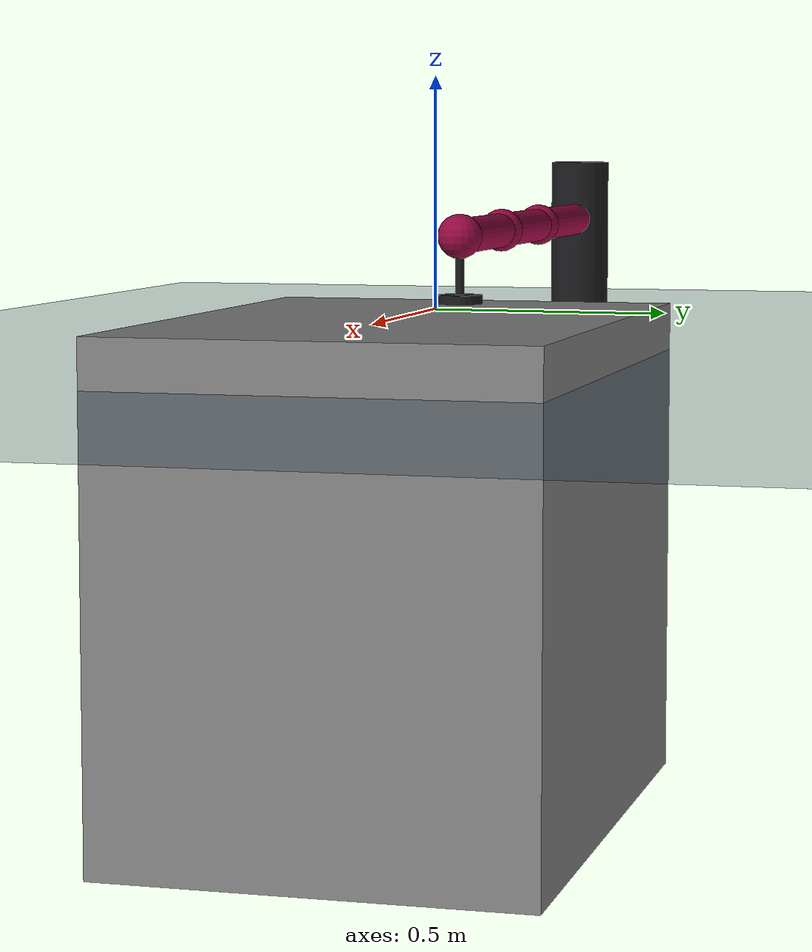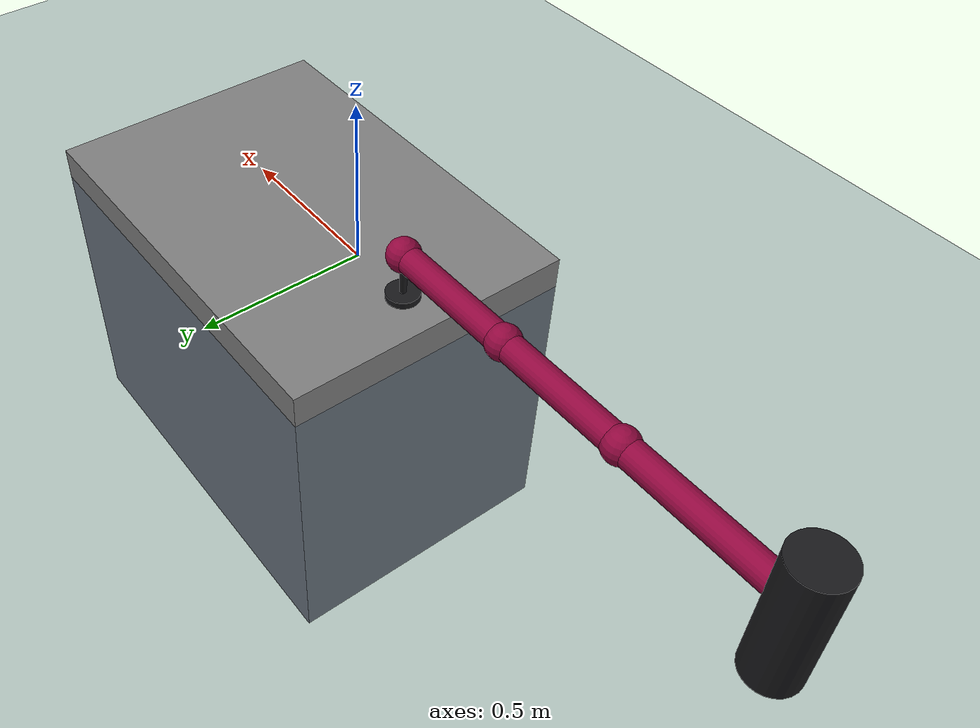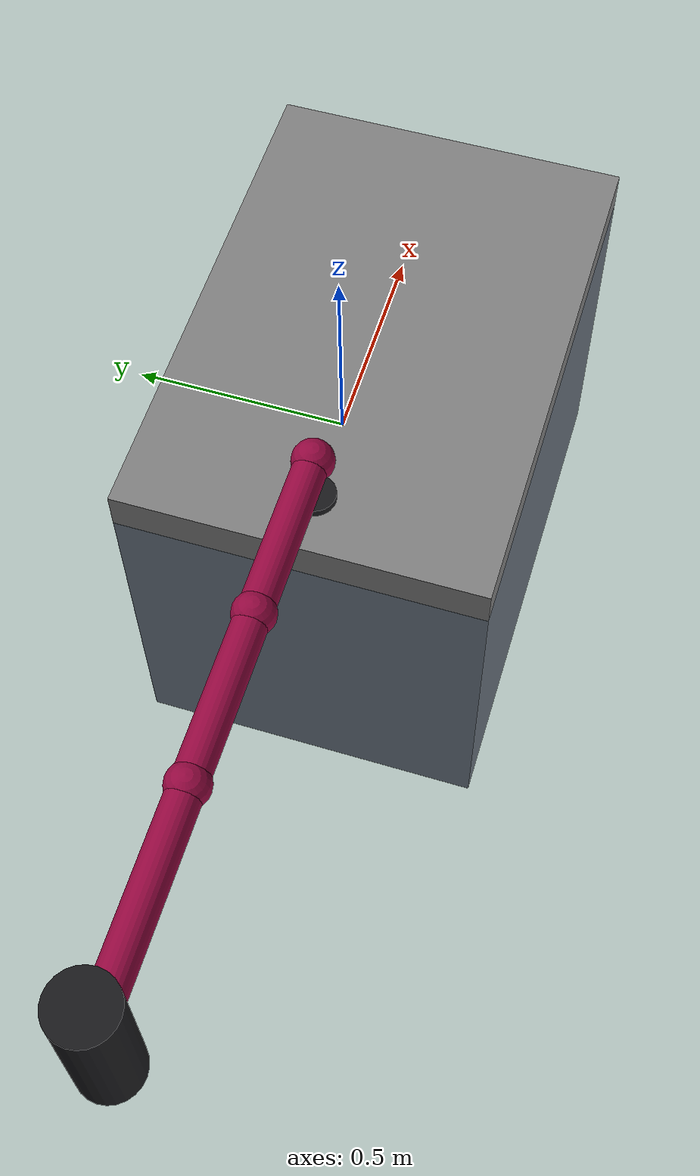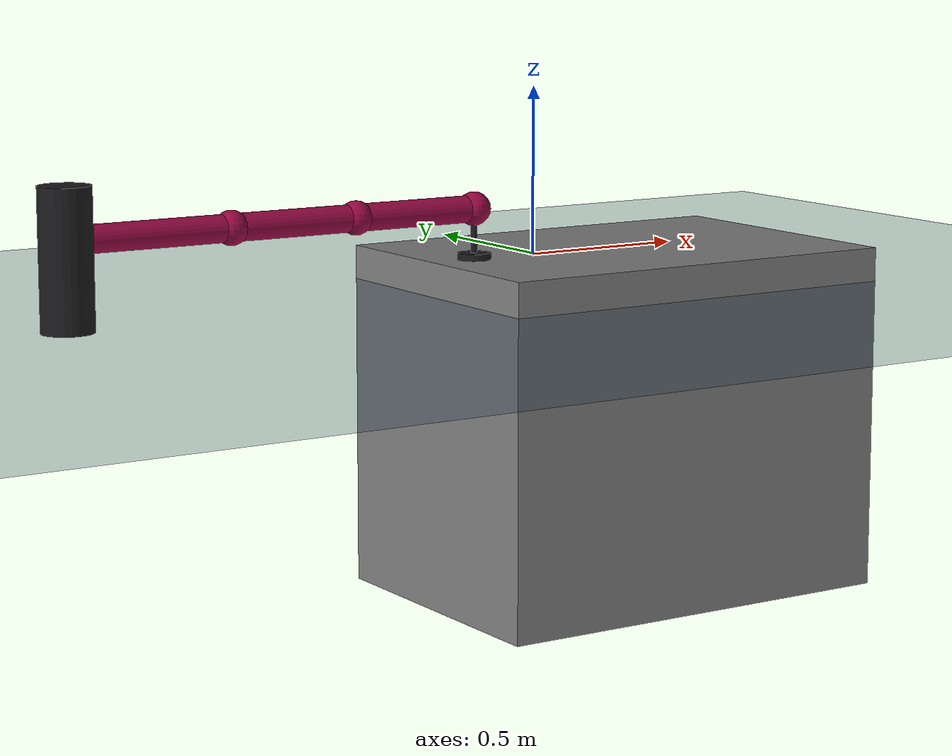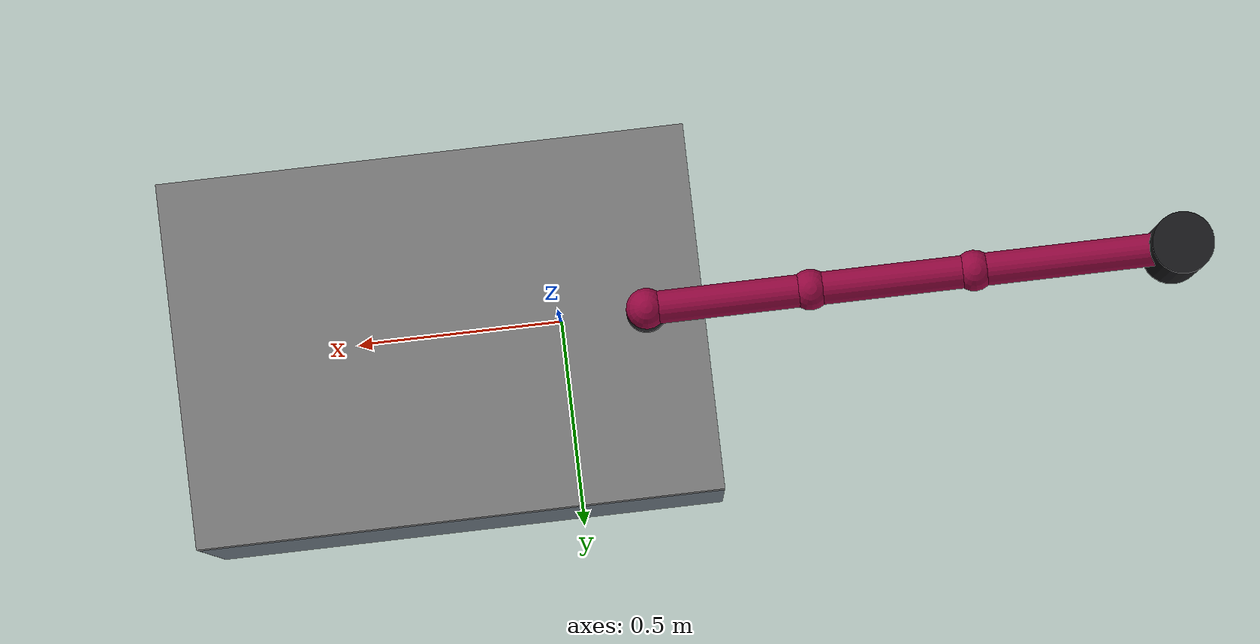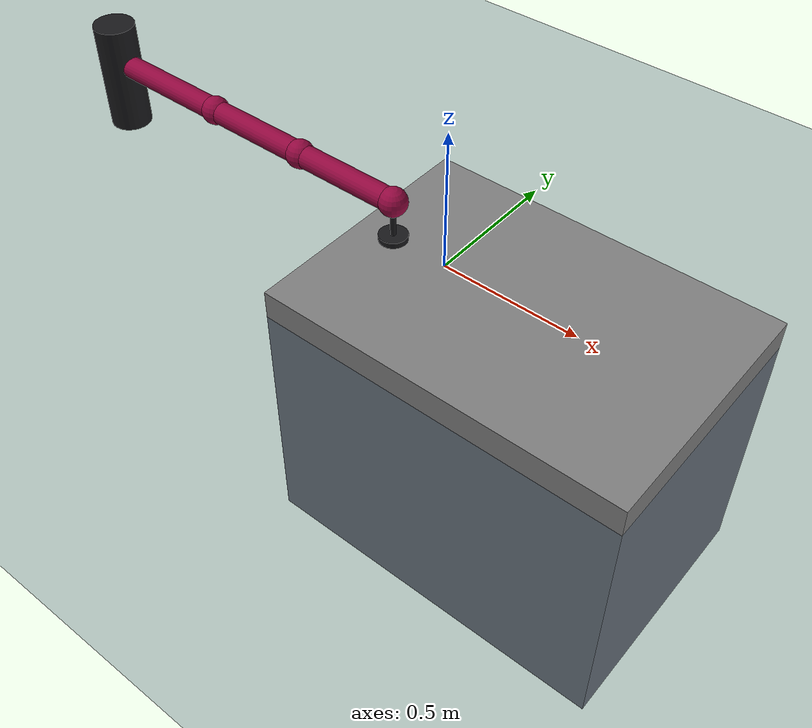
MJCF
<mujoco model="AirHockeySingle">

    <include file="planar_robot_1.xml"/>

    <include file="table.xml"/>

    <asset>
        <texture type="skybox" builtin="gradient" rgb1="0.3 0.5 0.7" rgb2="0 0 0" width="512"
            height="3072"/>
        <texture type="2d" name="groundplane" builtin="checker" mark="edge" rgb1="0.2 0.3 0.4"
            rgb2="0.1 0.2 0.3" markrgb="0.8 0.8 0.8" width="300" height="300"/>
        <material name="groundplane" texture="groundplane" texuniform="true" texrepeat="5 5"
            reflectance="0.2"/>
    </asset>

    <contact>
        <exclude body1="planar_robot_1/body_ee" body2="table"/>
        <exclude body1="planar_robot_1/body_hand" body2="table"/>
        <exclude body1="planar_robot_1/body_3" body2="table"/>
        <exclude body1="planar_robot_1/body_2" body2="table"/>
        <exclude body1="planar_robot_1/body_1" body2="table"/>
        <exclude body1="planar_robot_1/base" body2="table"/>
    </contact>

    <worldbody>
        <light pos="0 0 3" dir="0 0 -1" directional="true"/>
        <geom pos="0 0 -0.1" name="floor" size="0 0 0.05" type="plane" material="groundplane"/>
    </worldbody>

</mujoco>

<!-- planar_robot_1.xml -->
<mujoco model="planar_robot_1">
    <compiler autolimits="true" angle="radian"/>
    <asset>
        <material name="dark_red" rgba="0.58 0.03 0.25 1"/>
        <material name="black" rgba="0.1 0.1 0.11 1"/>
    </asset>

    <default>
        <default class="visual">
            <geom contype="0" conaffinity="0"/>
        </default>
    </default>

    <worldbody>
        <body name="planar_robot_1/base" pos="-1.51 0 -0.1">
            <geom type="cylinder" material="black" size="0.075 0.2" pos="0 0 0.2" class="visual"/>
            <inertial pos="0 0 0" mass="1" diaginertia="0.05 0.018 0.044"/>
            <body name="planar_robot_1/body_1" pos="0 0 0.25">
                <joint name="planar_robot_1/joint_1" axis="0 0 1" range="-2.9670597283903604 2.9670597283903604"/>
                <inertial pos="0.25 0 0" mass="3" diaginertia="0.064375 0.064375 0.00375"/>
                <geom type="cylinder" material="dark_red" size="0.04 0.25" euler="0 1.57079632679 0" pos="0.25 0 0"/>
                <body name="planar_robot_1/body_2" pos="0.5 0 0" >
                    <joint name="planar_robot_1/joint_2" axis="0 0 1" range="-2.0943951023931953 2.0943951023931953"/>
                    <inertial pos="0.2 0 0" mass="2" diaginertia="0.0335 0.0335 0.003"/>
                    <geom type="cylinder" material="dark_red" size="0.04 0.2" euler="0 1.57079632679 0" pos="0.2 0 0"/>
                    <geom type="sphere" material="dark_red" size="0.05"/>
                    <body name="planar_robot_1/body_3" pos="0.4 0 0" >
                        <joint name="planar_robot_1/joint_3" axis="0 0 1" range="-2.0943951023931953 2.0943951023931953"/>
                        <inertial pos="0.2 0 0" mass="2" diaginertia="0.0335 0.0335 0.003"/>
                        <geom type="cylinder" material="dark_red" size="0.04 0.2" euler="0 1.57079632679 0" pos="0.2 0 0"/>
                        <geom type="sphere" material="dark_red" size="0.05"/>
                        <body name="planar_robot_1/body_hand" pos="0.4 0 0">
                            <inertial pos="0 0 0" mass="0.1" diaginertia="0.0008 0.0023 0.0023"/>
                            <geom type="sphere" material="dark_red" size="0.05"/>
                            <geom type="cylinder" material="black" size="0.01 0.075" pos="0 0 -0.075"/>
                            <body name="planar_robot_1/body_ee" pos="0 0 -0.15">
                                <inertial pos="0 0 0" mass="0.1" diaginertia="0.0008 0.0023 0.0023"/>
                                <geom name="planar_robot_1/ee" type="cylinder" material="black" size="0.05 0.01" pos="0 0 0.01" class="visual"/>
                                <geom name="planar_robot_1/ee_collision" type="cylinder" size="0.05 0.02" pos="0 0 0" friction="0 0 0" group="3" rgba="0 0 0 0"/>
                            </body>
                        </body>
                    </body>
                </body>
            </body>
        </body>
    </worldbody>

    <actuator>
        <motor name="planar_robot_1/joint_1" joint="planar_robot_1/joint_1" ctrlrange="-40 40"/>
        <motor name="planar_robot_1/joint_2" joint="planar_robot_1/joint_2" ctrlrange="-15 15"/>
        <motor name="planar_robot_1/joint_3" joint="planar_robot_1/joint_3" ctrlrange="-5 5"/>
    </actuator>
</mujoco>

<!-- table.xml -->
<mujoco model="table">
  <worldbody>
    <body name="table" pos="0.3 0.0 -0.525">
      <geom name="table" type="box" size="0.65 0.45 0.525" solref="0.004 1"/>
    </body>
  </worldbody>
</mujoco>
